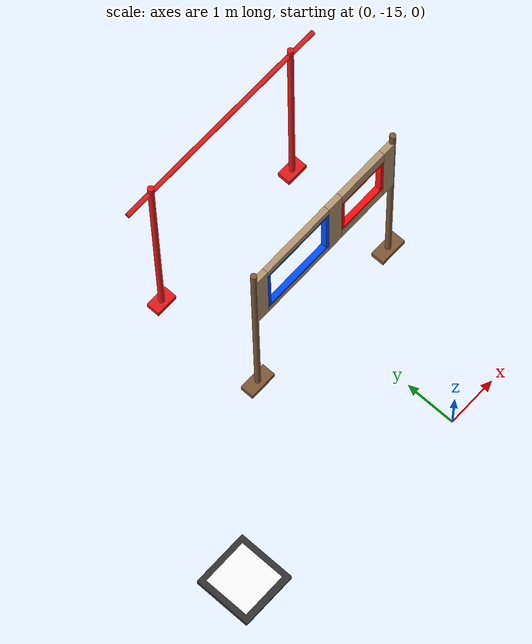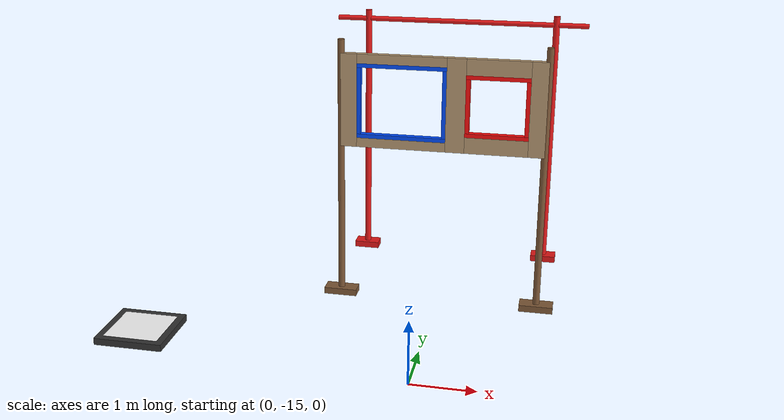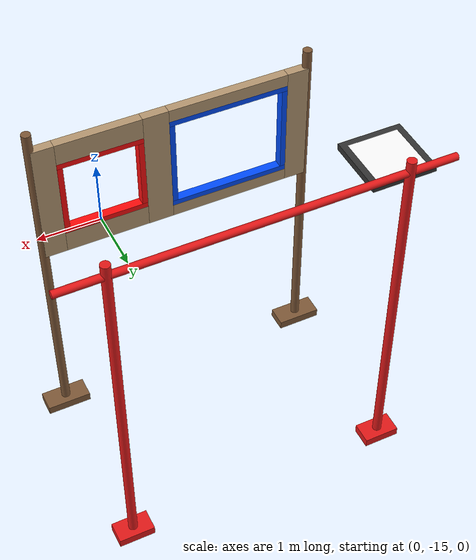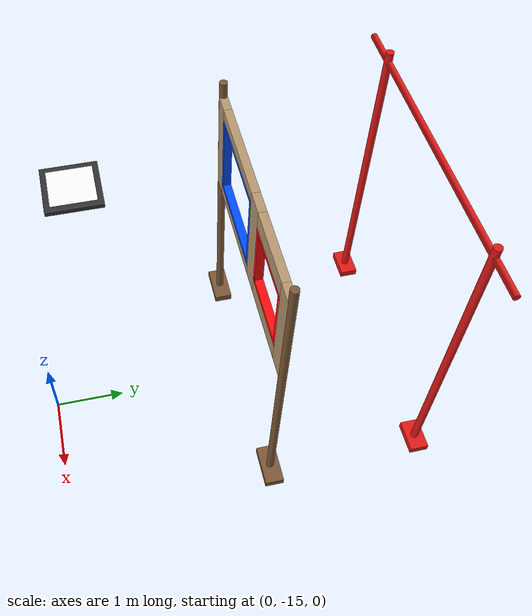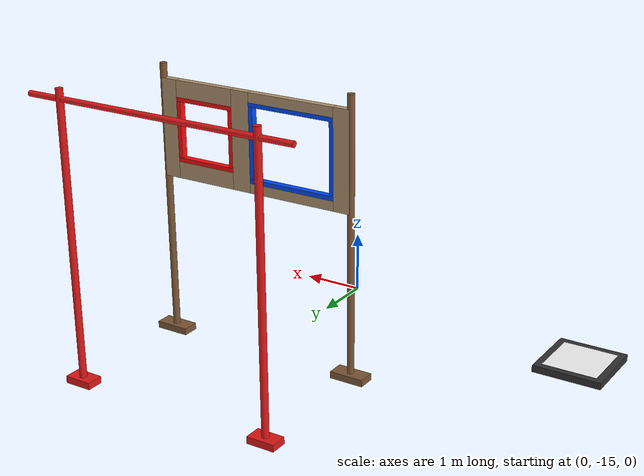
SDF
<sdf version="1.9">
 <world name="imav2026_scaled">
  <model name="exit_wall_leg_L">
   <static>true</static>
   <pose>-1.65 -12.1 2.2 0 0 0</pose>
   <link name="link">
    <collision name="col">
     <geometry><cylinder><radius>0.055</radius><length>4.4</length></cylinder></geometry>
    </collision>
    <visual name="v">
     <geometry><cylinder><radius>0.055</radius><length>4.4</length></cylinder></geometry>
     <material>
      <ambient>0.50 0.35 0.22 1</ambient>
      <diffuse>0.50 0.35 0.22 1</diffuse>
      <pbr><metal><roughness>0.8</roughness><metalness>0.0</metalness></metal></pbr>
     </material>
    </visual>
   </link>
  </model>
  <model name="exit_wall_foot_L">
   <static>true</static>
   <pose>-1.65 -12.1 0.055 0 0 0</pose>
   <link name="link">
    <collision name="col"><geometry><box><size>0.55 0.264 0.11</size></box></geometry></collision>
    <visual name="v">
     <geometry><box><size>0.55 0.264 0.11</size></box></geometry>
     <material>
      <ambient>0.50 0.35 0.22 1</ambient>
      <diffuse>0.50 0.35 0.22 1</diffuse>
      <pbr><metal><roughness>0.8</roughness><metalness>0.0</metalness></metal></pbr>
     </material>
    </visual>
   </link>
  </model>
  <model name="exit_wall_leg_R">
   <static>true</static>
   <pose>1.65 -12.1 2.2 0 0 0</pose>
   <link name="link">
    <collision name="col">
     <geometry><cylinder><radius>0.055</radius><length>4.4</length></cylinder></geometry>
    </collision>
    <visual name="v">
     <geometry><cylinder><radius>0.055</radius><length>4.4</length></cylinder></geometry>
     <material>
      <ambient>0.50 0.35 0.22 1</ambient>
      <diffuse>0.50 0.35 0.22 1</diffuse>
      <pbr><metal><roughness>0.8</roughness><metalness>0.0</metalness></metal></pbr>
     </material>
    </visual>
   </link>
  </model>
  <model name="exit_wall_foot_R">
   <static>true</static>
   <pose>1.65 -12.1 0.055 0 0 0</pose>
   <link name="link">
    <collision name="col"><geometry><box><size>0.55 0.264 0.11</size></box></geometry></collision>
    <visual name="v">
     <geometry><box><size>0.55 0.264 0.11</size></box></geometry>
     <material>
      <ambient>0.50 0.35 0.22 1</ambient>
      <diffuse>0.50 0.35 0.22 1</diffuse>
      <pbr><metal><roughness>0.8</roughness><metalness>0.0</metalness></metal></pbr>
     </material>
    </visual>
   </link>
  </model>
  <model name="exit_wall_bd_L">
   <static>true</static>
   <pose>-1.518 -12.1 3.41 0 0 0</pose>
   <link name="link">
    <collision name="col"><geometry><box><size>0.264 0.11 1.54</size></box></geometry></collision>
    <visual name="v">
     <geometry><box><size>0.264 0.11 1.54</size></box></geometry>
     <material>
      <ambient>0.72 0.60 0.45 1</ambient>
      <diffuse>0.72 0.60 0.45 1</diffuse>
      <pbr><metal><roughness>0.8</roughness><metalness>0.0</metalness></metal></pbr>
     </material>
    </visual>
   </link>
  </model>
  <model name="exit_wall_bd_M">
   <static>true</static>
   <pose>0.22 -12.1 3.41 0 0 0</pose>
   <link name="link">
    <collision name="col"><geometry><box><size>0.308 0.11 1.54</size></box></geometry></collision>
    <visual name="v">
     <geometry><box><size>0.308 0.11 1.54</size></box></geometry>
     <material>
      <ambient>0.72 0.60 0.45 1</ambient>
      <diffuse>0.72 0.60 0.45 1</diffuse>
      <pbr><metal><roughness>0.8</roughness><metalness>0.0</metalness></metal></pbr>
     </material>
    </visual>
   </link>
  </model>
  <model name="exit_wall_bd_R">
   <static>true</static>
   <pose>1.518 -12.1 3.41 0 0 0</pose>
   <link name="link">
    <collision name="col"><geometry><box><size>0.264 0.11 1.54</size></box></geometry></collision>
    <visual name="v">
     <geometry><box><size>0.264 0.11 1.54</size></box></geometry>
     <material>
      <ambient>0.72 0.60 0.45 1</ambient>
      <diffuse>0.72 0.60 0.45 1</diffuse>
      <pbr><metal><roughness>0.8</roughness><metalness>0.0</metalness></metal></pbr>
     </material>
    </visual>
   </link>
  </model>
  <model name="exit_wall_bd_B_blue">
   <static>true</static>
   <pose>-0.66 -12.1 2.717 0 0 0</pose>
   <link name="link">
    <collision name="col"><geometry><box><size>1.452 0.11 0.154</size></box></geometry></collision>
    <visual name="v">
     <geometry><box><size>1.452 0.11 0.154</size></box></geometry>
     <material>
      <ambient>0.72 0.60 0.45 1</ambient>
      <diffuse>0.72 0.60 0.45 1</diffuse>
      <pbr><metal><roughness>0.8</roughness><metalness>0.0</metalness></metal></pbr>
     </material>
    </visual>
   </link>
  </model>
  <model name="exit_wall_bd_T_blue">
   <static>true</static>
   <pose>-0.66 -12.1 4.103 0 0 0</pose>
   <link name="link">
    <collision name="col"><geometry><box><size>1.452 0.11 0.154</size></box></geometry></collision>
    <visual name="v">
     <geometry><box><size>1.452 0.11 0.154</size></box></geometry>
     <material>
      <ambient>0.72 0.60 0.45 1</ambient>
      <diffuse>0.72 0.60 0.45 1</diffuse>
      <pbr><metal><roughness>0.8</roughness><metalness>0.0</metalness></metal></pbr>
     </material>
    </visual>
   </link>
  </model>
  <model name="exit_wall_bd_B_red">
   <static>true</static>
   <pose>0.88 -12.1 2.772 0 0 0</pose>
   <link name="link">
    <collision name="col"><geometry><box><size>1.012 0.11 0.264</size></box></geometry></collision>
    <visual name="v">
     <geometry><box><size>1.012 0.11 0.264</size></box></geometry>
     <material>
      <ambient>0.72 0.60 0.45 1</ambient>
      <diffuse>0.72 0.60 0.45 1</diffuse>
      <pbr><metal><roughness>0.8</roughness><metalness>0.0</metalness></metal></pbr>
     </material>
    </visual>
   </link>
  </model>
  <model name="exit_wall_bd_T_red">
   <static>true</static>
   <pose>0.88 -12.1 4.048 0 0 0</pose>
   <link name="link">
    <collision name="col"><geometry><box><size>1.012 0.11 0.264</size></box></geometry></collision>
    <visual name="v">
     <geometry><box><size>1.012 0.11 0.264</size></box></geometry>
     <material>
      <ambient>0.72 0.60 0.45 1</ambient>
      <diffuse>0.72 0.60 0.45 1</diffuse>
      <pbr><metal><roughness>0.8</roughness><metalness>0.0</metalness></metal></pbr>
     </material>
    </visual>
   </link>
  </model>
  <model name="exit_wall_blue_top">
   <static>true</static>
   <pose>-0.66 -12.1 3.993 0 0 0</pose>
   <link name="link">
    <collision name="col"><geometry><box><size>1.452 0.11 0.066</size></box></geometry></collision>
    <visual name="v">
     <geometry><box><size>1.452 0.11 0.066</size></box></geometry>
     <material>
      <ambient>0.0 0.3 1.0 1</ambient>
      <diffuse>0.0 0.3 1.0 1</diffuse>
      <pbr><metal><roughness>0.5</roughness><metalness>0.0</metalness></metal></pbr>
     </material>
    </visual>
   </link>
  </model>
  <model name="exit_wall_blue_bot">
   <static>true</static>
   <pose>-0.66 -12.1 2.827 0 0 0</pose>
   <link name="link">
    <collision name="col"><geometry><box><size>1.452 0.11 0.066</size></box></geometry></collision>
    <visual name="v">
     <geometry><box><size>1.452 0.11 0.066</size></box></geometry>
     <material>
      <ambient>0.0 0.3 1.0 1</ambient>
      <diffuse>0.0 0.3 1.0 1</diffuse>
      <pbr><metal><roughness>0.5</roughness><metalness>0.0</metalness></metal></pbr>
     </material>
    </visual>
   </link>
  </model>
  <model name="exit_wall_blue_L">
   <static>true</static>
   <pose>-1.353 -12.1 3.41 0 0 0</pose>
   <link name="link">
    <collision name="col"><geometry><box><size>0.066 0.11 1.1</size></box></geometry></collision>
    <visual name="v">
     <geometry><box><size>0.066 0.11 1.1</size></box></geometry>
     <material>
      <ambient>0.0 0.3 1.0 1</ambient>
      <diffuse>0.0 0.3 1.0 1</diffuse>
      <pbr><metal><roughness>0.5</roughness><metalness>0.0</metalness></metal></pbr>
     </material>
    </visual>
   </link>
  </model>
  <model name="exit_wall_blue_R">
   <static>true</static>
   <pose>0.033 -12.1 3.41 0 0 0</pose>
   <link name="link">
    <collision name="col"><geometry><box><size>0.066 0.11 1.1</size></box></geometry></collision>
    <visual name="v">
     <geometry><box><size>0.066 0.11 1.1</size></box></geometry>
     <material>
      <ambient>0.0 0.3 1.0 1</ambient>
      <diffuse>0.0 0.3 1.0 1</diffuse>
      <pbr><metal><roughness>0.5</roughness><metalness>0.0</metalness></metal></pbr>
     </material>
    </visual>
   </link>
  </model>
  <model name="exit_wall_red_top">
   <static>true</static>
   <pose>0.88 -12.1 3.883 0 0 0</pose>
   <link name="link">
    <collision name="col"><geometry><box><size>1.012 0.11 0.066</size></box></geometry></collision>
    <visual name="v">
     <geometry><box><size>1.012 0.11 0.066</size></box></geometry>
     <material>
      <ambient>1.0 0.05 0.05 1</ambient>
      <diffuse>1.0 0.05 0.05 1</diffuse>
      <pbr><metal><roughness>0.5</roughness><metalness>0.0</metalness></metal></pbr>
     </material>
    </visual>
   </link>
  </model>
  <model name="exit_wall_red_bot">
   <static>true</static>
   <pose>0.88 -12.1 2.937 0 0 0</pose>
   <link name="link">
    <collision name="col"><geometry><box><size>1.012 0.11 0.066</size></box></geometry></collision>
    <visual name="v">
     <geometry><box><size>1.012 0.11 0.066</size></box></geometry>
     <material>
      <ambient>1.0 0.05 0.05 1</ambient>
      <diffuse>1.0 0.05 0.05 1</diffuse>
      <pbr><metal><roughness>0.5</roughness><metalness>0.0</metalness></metal></pbr>
     </material>
    </visual>
   </link>
  </model>
  <model name="exit_wall_red_L">
   <static>true</static>
   <pose>0.407 -12.1 3.41 0 0 0</pose>
   <link name="link">
    <collision name="col"><geometry><box><size>0.066 0.11 0.88</size></box></geometry></collision>
    <visual name="v">
     <geometry><box><size>0.066 0.11 0.88</size></box></geometry>
     <material>
      <ambient>1.0 0.05 0.05 1</ambient>
      <diffuse>1.0 0.05 0.05 1</diffuse>
      <pbr><metal><roughness>0.5</roughness><metalness>0.0</metalness></metal></pbr>
     </material>
    </visual>
   </link>
  </model>
  <model name="exit_wall_red_R">
   <static>true</static>
   <pose>1.353 -12.1 3.41 0 0 0</pose>
   <link name="link">
    <collision name="col"><geometry><box><size>0.066 0.11 0.88</size></box></geometry></collision>
    <visual name="v">
     <geometry><box><size>0.066 0.11 0.88</size></box></geometry>
     <material>
      <ambient>1.0 0.05 0.05 1</ambient>
      <diffuse>1.0 0.05 0.05 1</diffuse>
      <pbr><metal><roughness>0.5</roughness><metalness>0.0</metalness></metal></pbr>
     </material>
    </visual>
   </link>
  </model>
  <model name="red_post_L">
   <static>true</static>
   <pose>-1.65 -9.9 2.255 0 0 0</pose>
   <link name="link">
    <collision name="col">
     <geometry><cylinder><radius>0.055</radius><length>4.51</length></cylinder></geometry>
    </collision>
    <visual name="v">
     <geometry><cylinder><radius>0.055</radius><length>4.51</length></cylinder></geometry>
     <material>
      <ambient>0.9 0.1 0.1 1</ambient>
      <diffuse>0.9 0.1 0.1 1</diffuse>
      <pbr><metal><roughness>0.5</roughness><metalness>0.0</metalness></metal></pbr>
     </material>
    </visual>
   </link>
  </model>
  <model name="red_post_R">
   <static>true</static>
   <pose>1.65 -9.9 2.255 0 0 0</pose>
   <link name="link">
    <collision name="col">
     <geometry><cylinder><radius>0.055</radius><length>4.51</length></cylinder></geometry>
    </collision>
    <visual name="v">
     <geometry><cylinder><radius>0.055</radius><length>4.51</length></cylinder></geometry>
     <material>
      <ambient>0.9 0.1 0.1 1</ambient>
      <diffuse>0.9 0.1 0.1 1</diffuse>
      <pbr><metal><roughness>0.5</roughness><metalness>0.0</metalness></metal></pbr>
     </material>
    </visual>
   </link>
  </model>
  <model name="red_foot_L">
   <static>true</static>
   <pose>-1.65 -9.9 0.055 0 0 0</pose>
   <link name="link">
    <collision name="col"><geometry><box><size>0.44 0.264 0.11</size></box></geometry></collision>
    <visual name="v">
     <geometry><box><size>0.44 0.264 0.11</size></box></geometry>
     <material>
      <ambient>0.9 0.1 0.1 1</ambient>
      <diffuse>0.9 0.1 0.1 1</diffuse>
      <pbr><metal><roughness>0.5</roughness><metalness>0.0</metalness></metal></pbr>
     </material>
    </visual>
   </link>
  </model>
  <model name="red_foot_R">
   <static>true</static>
   <pose>1.65 -9.9 0.055 0 0 0</pose>
   <link name="link">
    <collision name="col"><geometry><box><size>0.44 0.264 0.11</size></box></geometry></collision>
    <visual name="v">
     <geometry><box><size>0.44 0.264 0.11</size></box></geometry>
     <material>
      <ambient>0.9 0.1 0.1 1</ambient>
      <diffuse>0.9 0.1 0.1 1</diffuse>
      <pbr><metal><roughness>0.5</roughness><metalness>0.0</metalness></metal></pbr>
     </material>
    </visual>
   </link>
  </model>
  <model name="red_bar">
   <static>true</static>
   <pose>0.0 -9.9 4.356 0 1.5708 0</pose>
   <link name="link">
    <collision name="col">
     <geometry><cylinder><radius>0.044</radius><length>4.4</length></cylinder></geometry>
    </collision>
    <visual name="v">
     <geometry><cylinder><radius>0.044</radius><length>4.4</length></cylinder></geometry>
     <material>
      <ambient>0.9 0.1 0.1 1</ambient>
      <diffuse>0.9 0.1 0.1 1</diffuse>
      <pbr><metal><roughness>0.5</roughness><metalness>0.0</metalness></metal></pbr>
     </material>
    </visual>
   </link>
  </model>
  <model name="takeoff_platform">
   <static>true</static>
   <pose>-4.4 -14.3 0.055 0 0 0</pose>
   <link name="link">
    <collision name="col"><geometry><box><size>1.1 1.1 0.11</size></box></geometry></collision>
    <visual name="v_base">
     <geometry><box><size>1.1 1.1 0.11</size></box></geometry>
     <material><ambient>0.20 0.20 0.20 1</ambient><diffuse>0.20 0.20 0.20 1</diffuse></material>
    </visual>
    <collision name="aruco_id0_col">
     <pose>0.0 0.0 0.0572 0 0 1.5708</pose>
     <geometry><box><size>0.88 0.88 0.0022</size></box></geometry>
    </collision>
    <visual name="aruco_id0">
     <pose>0.0 0.0 0.0572 0 0 1.5708</pose>
     <geometry><box><size>0.88 0.88 0.0022</size></box></geometry>
     <material>
      <diffuse>1.0 1.0 1.0 1.0</diffuse>
      <pbr>
       <metal>
        <albedo_map>model://materials/textures/aruco_marker_0.jpg</albedo_map>
        <roughness>0.5</roughness>
        <metalness>0.0</metalness>
       </metal>
      </pbr>
     </material>
    </visual>
   </link>
  </model>
 </world>
</sdf>
